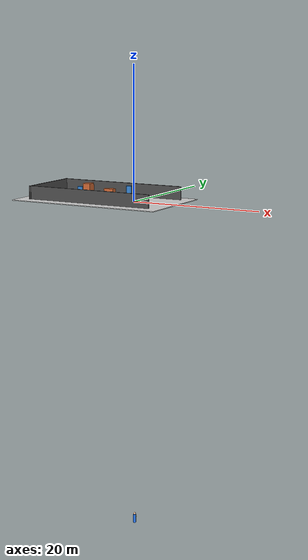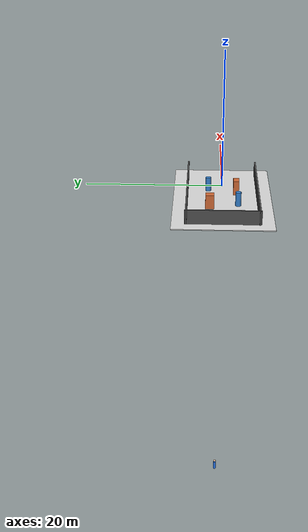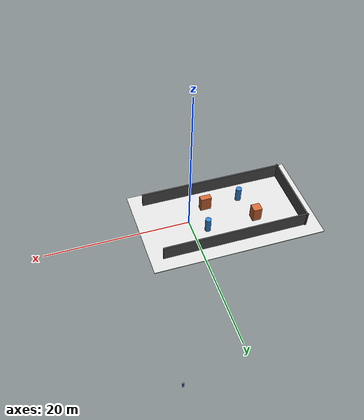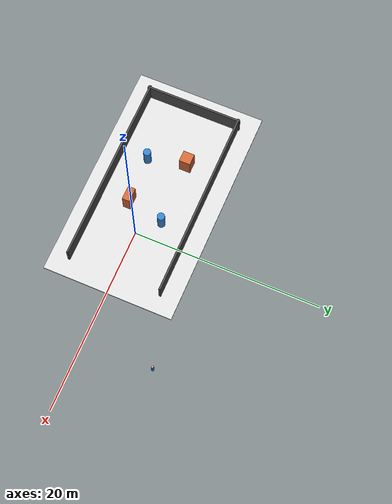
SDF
<sdf version="1.9">
 <world name="arena_dataset">
  <model name="ground">
   <static>true</static>
   <link name="link">
    <collision name="collision"><geometry><box><size>24.0 14.0 0.1</size></box></geometry></collision>
    <visual name="visual">
     <geometry><box><size>24.0 14.0 0.1</size></box></geometry>
     <material><ambient>0.85 0.85 0.85 1</ambient><diffuse>0.85 0.85 0.85 1</diffuse></material>
    </visual>
   </link>
   <pose>-5.0 0.0 -0.05 0 0 0</pose>
  </model>
  <model name="wall_west">
   <static>true</static>
   <link name="link">
    <collision name="collision"><geometry><box><size>0.2 10.4 2.0</size></box></geometry></collision>
    <visual name="visual">
     <geometry><box><size>0.2 10.4 2.0</size></box></geometry>
     <material><ambient>0.3 0.3 0.3 1</ambient><diffuse>0.3 0.3 0.3 1</diffuse></material>
    </visual>
   </link>
   <pose>-15.0 0.0 1.0 0 0 0</pose>
  </model>
  <model name="wall_south">
   <static>true</static>
   <link name="link">
    <collision name="collision"><geometry><box><size>20.4 0.2 2.0</size></box></geometry></collision>
    <visual name="visual">
     <geometry><box><size>20.4 0.2 2.0</size></box></geometry>
     <material><ambient>0.3 0.3 0.3 1</ambient><diffuse>0.3 0.3 0.3 1</diffuse></material>
    </visual>
   </link>
   <pose>-5.0 -5.0 1.0 0 0 0</pose>
  </model>
  <model name="wall_north">
   <static>true</static>
   <link name="link">
    <collision name="collision"><geometry><box><size>20.4 0.2 2.0</size></box></geometry></collision>
    <visual name="visual">
     <geometry><box><size>20.4 0.2 2.0</size></box></geometry>
     <material><ambient>0.3 0.3 0.3 1</ambient><diffuse>0.3 0.3 0.3 1</diffuse></material>
    </visual>
   </link>
   <pose>-5.0 5.0 1.0 0 0 0</pose>
  </model>
  <model name="static_box_A">
   <static>true</static>
   <link name="link">
    <collision name="collision"><geometry><box><size>1.2 1.2 2.0</size></box></geometry></collision>
    <visual name="visual">
     <geometry><box><size>1.2 1.2 2.0</size></box></geometry>
     <material><ambient>0.8 0.4 0.2 1</ambient><diffuse>0.8 0.4 0.2 1</diffuse></material>
    </visual>
   </link>
   <pose>-9.0 1.8 1.0 0 0 0</pose>
  </model>
  <model name="static_cylinder_B">
   <static>true</static>
   <link name="link">
    <collision name="collision">
     <geometry><cylinder><radius>0.4</radius><length>2.0</length></cylinder></geometry>
    </collision>
    <visual name="visual">
     <geometry><cylinder><radius>0.4</radius><length>2.0</length></cylinder></geometry>
     <material><ambient>0.2 0.5 0.8 1</ambient><diffuse>0.2 0.5 0.8 1</diffuse></material>
    </visual>
   </link>
   <pose>-8.0 -2.2 1.0 0 0 0</pose>
  </model>
  <model name="static_box_C">
   <static>true</static>
   <link name="link">
    <collision name="collision"><geometry><box><size>1.5 0.8 2.0</size></box></geometry></collision>
    <visual name="visual">
     <geometry><box><size>1.5 0.8 2.0</size></box></geometry>
     <material><ambient>0.8 0.4 0.2 1</ambient><diffuse>0.8 0.4 0.2 1</diffuse></material>
    </visual>
   </link>
   <pose>-3.0 -2.0 1.0 0 0 0</pose>
  </model>
  <model name="static_cylinder_D">
   <static>true</static>
   <link name="link">
    <collision name="collision">
     <geometry><cylinder><radius>0.4</radius><length>2.0</length></cylinder></geometry>
    </collision>
    <visual name="visual">
     <geometry><cylinder><radius>0.4</radius><length>2.0</length></cylinder></geometry>
     <material><ambient>0.2 0.5 0.8 1</ambient><diffuse>0.2 0.5 0.8 1</diffuse></material>
    </visual>
   </link>
   <pose>-2.0 2.0 1.0 0 0 0</pose>
  </model>
  <model name="human_01_proxy">
   <pose>0 0 -50 0 0 0</pose>
   <static>false</static>
   <link name="body">
    <gravity>false</gravity>
    <kinematic>true</kinematic>
    <collision name="collision">
     <geometry><cylinder><radius>0.22</radius><length>1.70</length></cylinder></geometry>
    </collision>
    <visual name="body_visual">
     <pose>0 0 -0.19 0 0 0</pose>
     <geometry><cylinder><radius>0.20</radius><length>1.32</length></cylinder></geometry>
     <material><ambient>0.15 0.45 0.90 1</ambient><diffuse>0.15 0.45 0.90 1</diffuse></material>
    </visual>
    <visual name="head_visual">
     <pose>0 0 0.62 0 0 0</pose>
     <geometry><sphere><radius>0.18</radius></sphere></geometry>
     <material><ambient>0.95 0.75 0.58 1</ambient><diffuse>0.95 0.75 0.58 1</diffuse></material>
    </visual>
    <visual name="heading_marker">
     <pose>0.25 0 0.15 0 0 0</pose>
     <geometry><box><size>0.18 0.08 0.08</size></box></geometry>
     <material><ambient>0.95 0.95 0.10 1</ambient><diffuse>0.95 0.95 0.10 1</diffuse></material>
    </visual>
   </link>
  </model>
  <model name="human_02_proxy">
   <pose>0 0 -50 0 0 0</pose>
   <static>false</static>
   <link name="body">
    <gravity>false</gravity>
    <kinematic>true</kinematic>
    <collision name="collision">
     <geometry><cylinder><radius>0.22</radius><length>1.70</length></cylinder></geometry>
    </collision>
    <visual name="body_visual">
     <pose>0 0 -0.19 0 0 0</pose>
     <geometry><cylinder><radius>0.20</radius><length>1.32</length></cylinder></geometry>
     <material><ambient>0.90 0.35 0.20 1</ambient><diffuse>0.90 0.35 0.20 1</diffuse></material>
    </visual>
    <visual name="head_visual">
     <pose>0 0 0.62 0 0 0</pose>
     <geometry><sphere><radius>0.18</radius></sphere></geometry>
     <material><ambient>0.95 0.75 0.58 1</ambient><diffuse>0.95 0.75 0.58 1</diffuse></material>
    </visual>
    <visual name="heading_marker">
     <pose>0.25 0 0.15 0 0 0</pose>
     <geometry><box><size>0.18 0.08 0.08</size></box></geometry>
     <material><ambient>0.95 0.95 0.10 1</ambient><diffuse>0.95 0.95 0.10 1</diffuse></material>
    </visual>
   </link>
  </model>
  <model name="human_03_proxy">
   <pose>0 0 -50 0 0 0</pose>
   <static>false</static>
   <link name="body">
    <gravity>false</gravity>
    <kinematic>true</kinematic>
    <collision name="collision">
     <geometry><cylinder><radius>0.22</radius><length>1.70</length></cylinder></geometry>
    </collision>
    <visual name="body_visual">
     <pose>0 0 -0.19 0 0 0</pose>
     <geometry><cylinder><radius>0.20</radius><length>1.32</length></cylinder></geometry>
     <material><ambient>0.25 0.70 0.35 1</ambient><diffuse>0.25 0.70 0.35 1</diffuse></material>
    </visual>
    <visual name="head_visual">
     <pose>0 0 0.62 0 0 0</pose>
     <geometry><sphere><radius>0.18</radius></sphere></geometry>
     <material><ambient>0.95 0.75 0.58 1</ambient><diffuse>0.95 0.75 0.58 1</diffuse></material>
    </visual>
    <visual name="heading_marker">
     <pose>0.25 0 0.15 0 0 0</pose>
     <geometry><box><size>0.18 0.08 0.08</size></box></geometry>
     <material><ambient>0.95 0.95 0.10 1</ambient><diffuse>0.95 0.95 0.10 1</diffuse></material>
    </visual>
   </link>
  </model>
  <model name="human_04_proxy">
   <pose>0 0 -50 0 0 0</pose>
   <static>false</static>
   <link name="body">
    <gravity>false</gravity>
    <kinematic>true</kinematic>
    <collision name="collision">
     <geometry><cylinder><radius>0.22</radius><length>1.70</length></cylinder></geometry>
    </collision>
    <visual name="body_visual">
     <pose>0 0 -0.19 0 0 0</pose>
     <geometry><cylinder><radius>0.20</radius><length>1.32</length></cylinder></geometry>
     <material><ambient>0.65 0.35 0.80 1</ambient><diffuse>0.65 0.35 0.80 1</diffuse></material>
    </visual>
    <visual name="head_visual">
     <pose>0 0 0.62 0 0 0</pose>
     <geometry><sphere><radius>0.18</radius></sphere></geometry>
     <material><ambient>0.95 0.75 0.58 1</ambient><diffuse>0.95 0.75 0.58 1</diffuse></material>
    </visual>
    <visual name="heading_marker">
     <pose>0.25 0 0.15 0 0 0</pose>
     <geometry><box><size>0.18 0.08 0.08</size></box></geometry>
     <material><ambient>0.95 0.95 0.10 1</ambient><diffuse>0.95 0.95 0.10 1</diffuse></material>
    </visual>
   </link>
  </model>
 </world>
</sdf>
